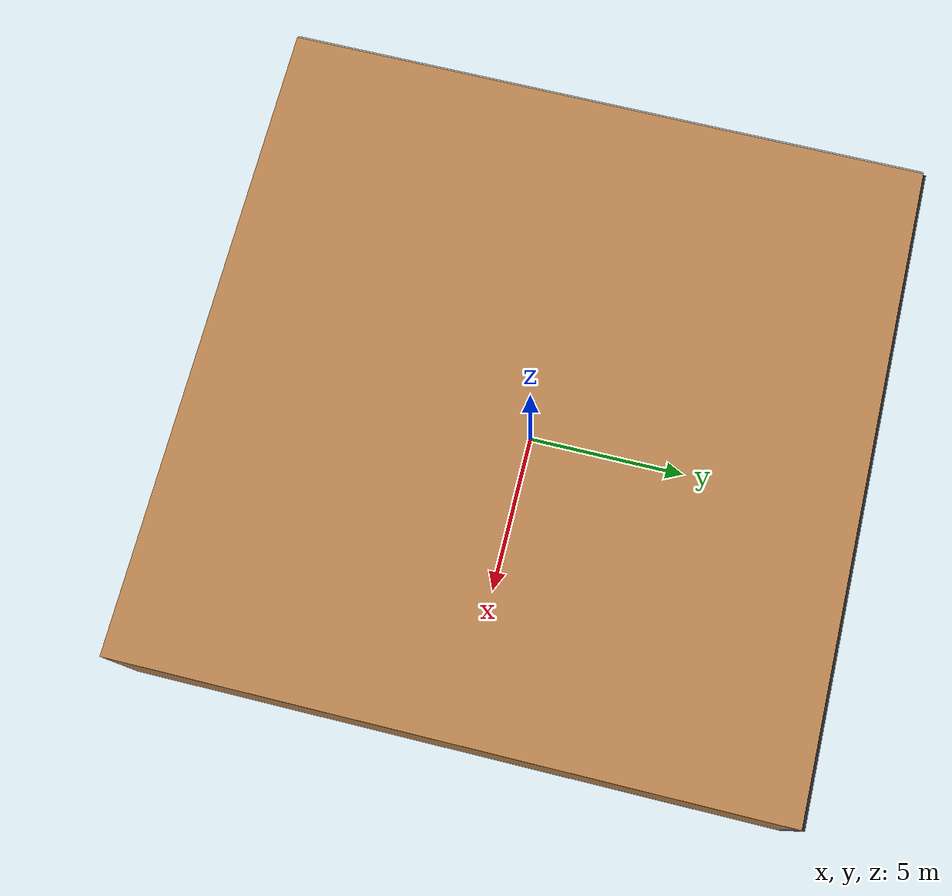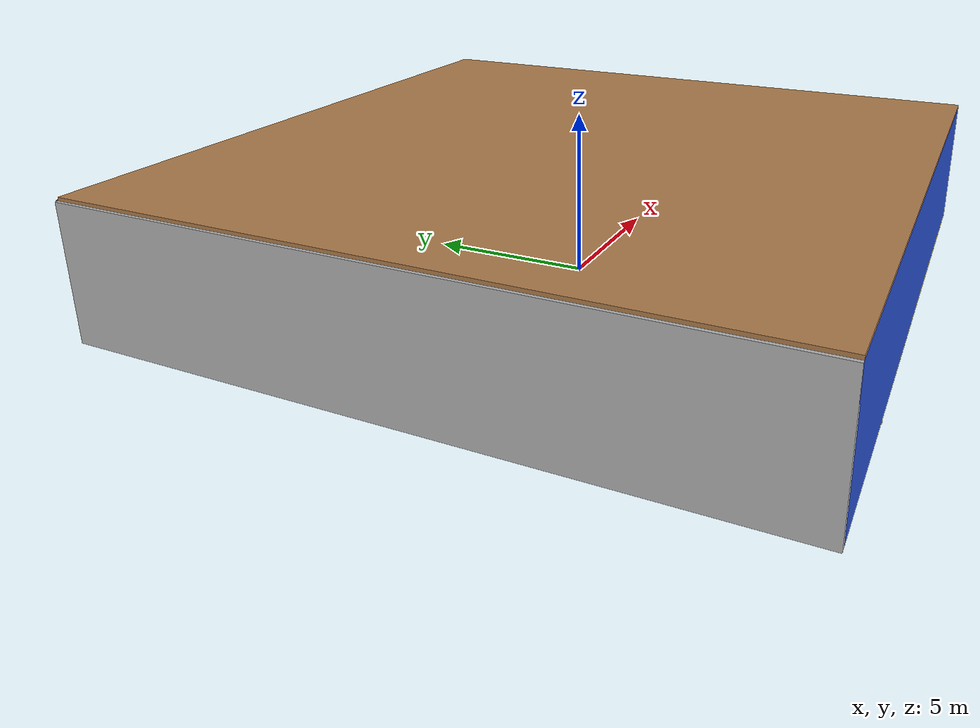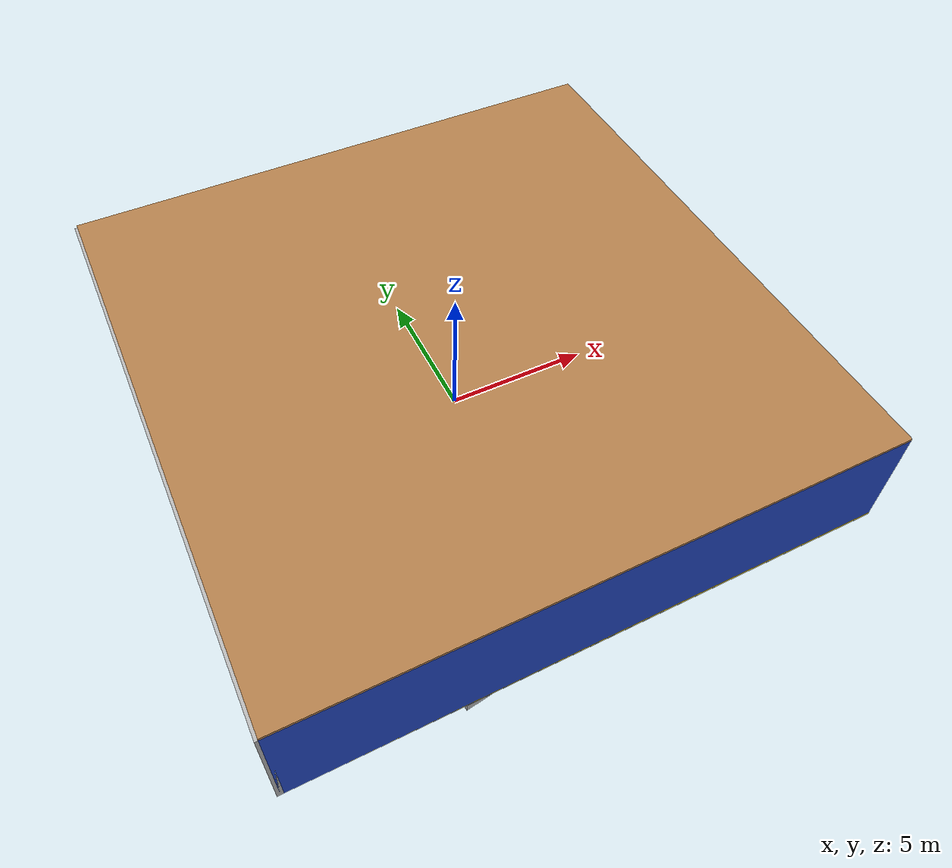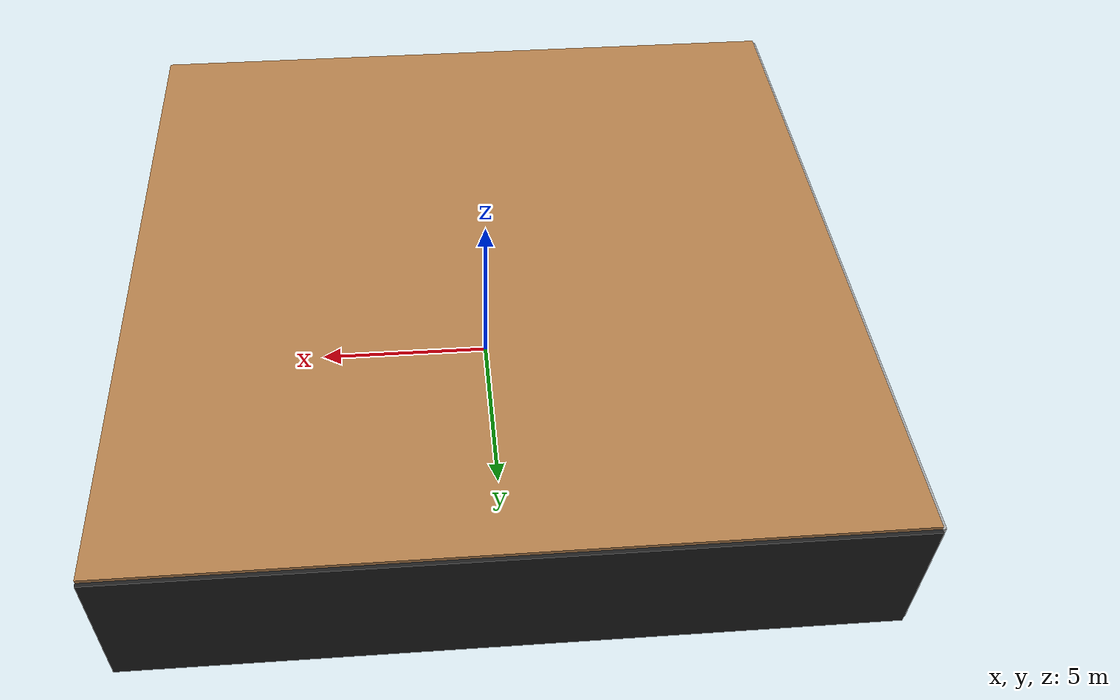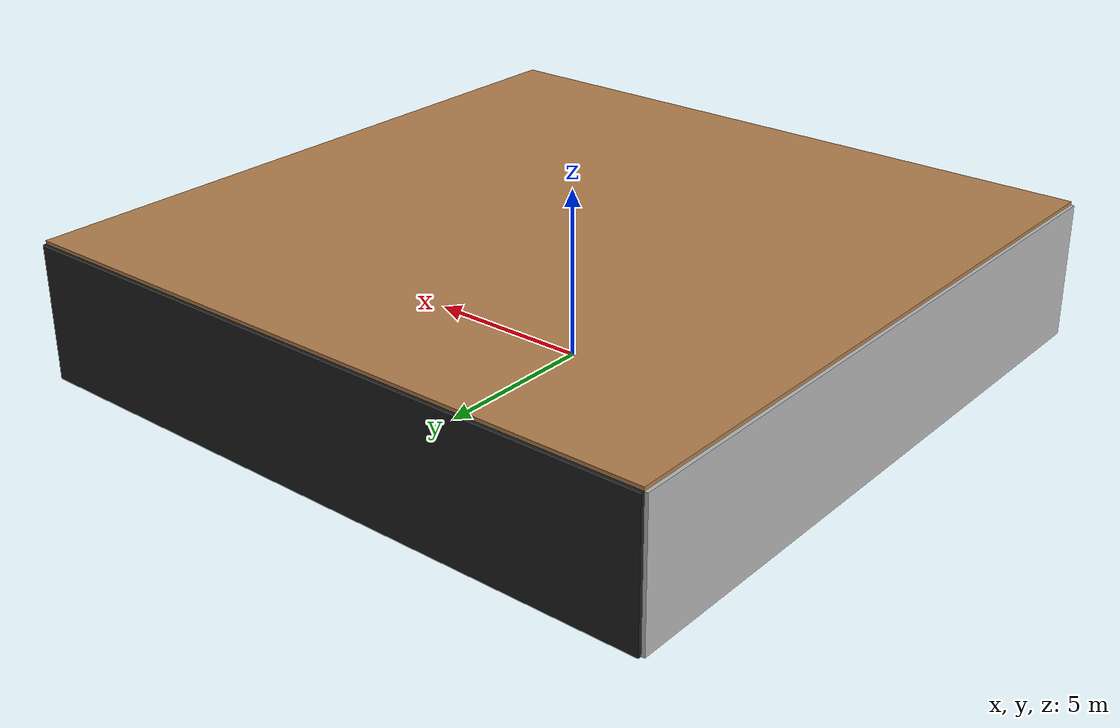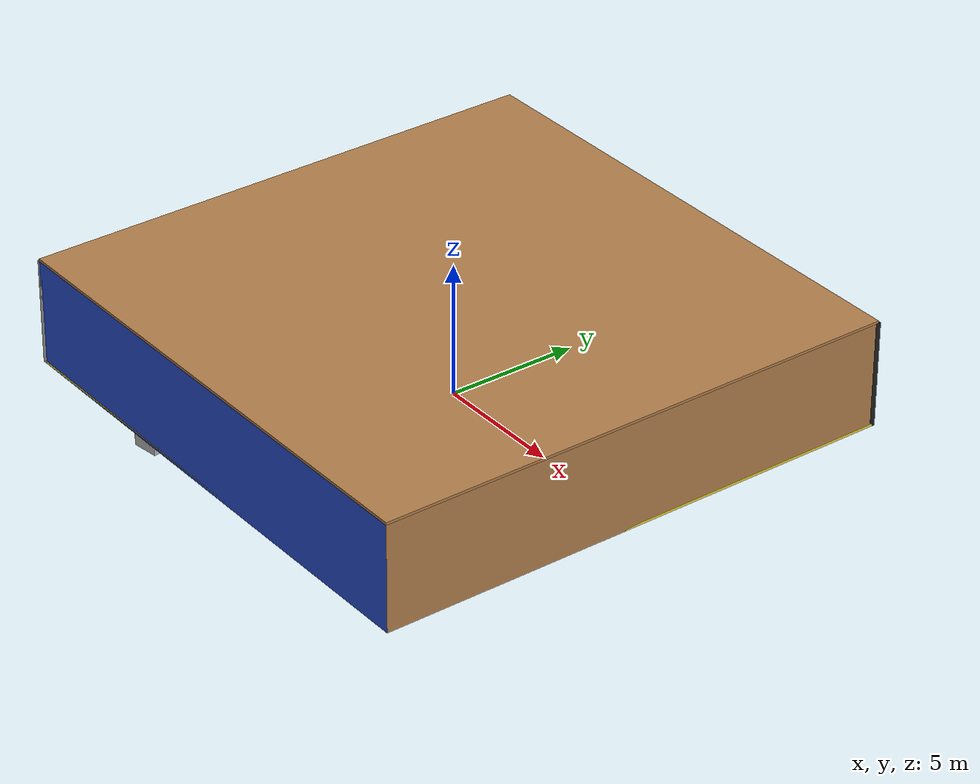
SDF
<sdf version="1.4">
 <world name="default">
  <physics type="ode">
   <max_step_size>0.001</max_step_size>
   <real_time_factor>1</real_time_factor>
   <real_time_update_rate>1000</real_time_update_rate>
   <gravity>0 0 -9.8</gravity>
  </physics>
  <scene><ambient>0.4 0.4 0.4 1</ambient><background>0.7 0.7 0.7 1</background><shadows>1</shadows></scene>
  <model name="Surrounding">
   <static>1</static>
   <link name="Ceiling">
    <collision name="Ceiling_Collision"><geometry><box><size>20 20 0.1</size></box></geometry></collision>
    <visual name="Ceiling_Visual">
     <geometry><box><size>20 20 0.1</size></box></geometry>
     <material>
      <script><uri>file://media/materials/scripts/gazebo.material</uri><name>Gazebo/WoodFloor</name></script>
     </material>
    </visual>
    <pose>0 0 4.05 0 0 0</pose>
   </link>
   <link name="Wall_South">
    <collision name="Wall_South_Collision">
     <geometry><box><size>20 0 4</size></box></geometry>
     <pose>0 0 2 0 -0 0</pose>
    </collision>
    <visual name="Wall_South_Visual">
     <pose>0 0 2 0 -0 0</pose>
     <geometry><box><size>20 0 4</size></box></geometry>
     <material>
      <script><uri>file://media/materials/scripts/gazebo.material</uri><name>Gazebo/BlueGlow</name></script>
     </material>
    </visual>
    <velocity_decay><linear>0</linear><angular>0</angular></velocity_decay>
    <pose>0 -10 0 0 -0 0</pose>
   </link>
   <link name="Wall_East">
    <collision name="Wall_21_Collision">
     <geometry><box><size>20 0 4</size></box></geometry>
     <pose>0 0 2 0 -0 0</pose>
    </collision>
    <visual name="Wall_21_Visual">
     <pose>0 0 2 0 -0 0</pose>
     <geometry><box><size>20 0 4</size></box></geometry>
     <material>
      <script><uri>file://media/materials/scripts/gazebo.material</uri><name>Gazebo/WoodFloor</name></script>
     </material>
    </visual>
    <velocity_decay><linear>0</linear><angular>0</angular></velocity_decay>
    <pose>10 0 0 0 -0 1.5708</pose>
   </link>
   <link name="Wall_North">
    <collision name="Wall_22_Collision">
     <geometry><box><size>20 0.2 4</size></box></geometry>
     <pose>0 0 2 0 -0 0</pose>
    </collision>
    <visual name="Wall_22_Visual">
     <pose>0 0 2 0 -0 0</pose>
     <geometry><box><size>20 0.2 4</size></box></geometry>
     <material>
      <script><uri>file://media/materials/scripts/gazebo.material</uri><name>Gazebo/Black</name></script>
     </material>
    </visual>
    <velocity_decay><linear>0</linear><angular>0</angular></velocity_decay>
    <pose>0 10 0 0 -0 0</pose>
   </link>
   <link name="Wall_West">
    <collision name="Wall_23_Collision">
     <geometry><box><size>20 0.2 4</size></box></geometry>
     <pose>0 0 2 0 -0 0</pose>
    </collision>
    <visual name="Wall_23_Visual">
     <pose>0 0 2 0 -0 0</pose>
     <geometry><box><size>20 0.2 4</size></box></geometry>
     <material>
      <script><uri>file://media/materials/scripts/gazebo.material</uri><name>Gazebo/PioneerBody</name></script>
     </material>
    </visual>
    <velocity_decay><linear>0</linear><angular>0</angular></velocity_decay>
    <pose>-10 0 0 0 0 -1.5708</pose>
   </link>
   <link name="Ground_link">
    <collision name="collision">
     <pose>0 0 .05 0 -0 0</pose>
     <geometry><box><size>20 20 0.1</size></box></geometry>
    </collision>
    <visual name="visual">
     <pose>0 0 .05 0 -0 0</pose>
     <geometry><box><size>20 20 0.1</size></box></geometry>
     <material>
      <script><uri>file://media/materials/scripts/gazebo.material</uri><name>Gazebo/ZincYellow</name></script>
     </material>
    </visual>
   </link>
   <static>1</static>
  </model>
  <spherical_coordinates>
   <surface_model>EARTH_WGS84</surface_model>
   <latitude_deg>0</latitude_deg>
   <longitude_deg>0</longitude_deg>
   <elevation>0</elevation>
   <heading_deg>0</heading_deg>
  </spherical_coordinates>
  <light name="lightball_0" type="diffuse">
   <diffuse>0.8 0.8 0.8 1</diffuse>
   <specular>0.2 0.2 0.2 1</specular>
   <attenuation>
    <range>100</range>
    <constant>0.7</constant>
    <linear>0.01</linear>
    <quadratic>0.001</quadratic>
   </attenuation>
   <direction>-0.5 0.1 -0.9</direction>
   <pose>-9.20601702937 3.60802405178 1.48068144095 0 0 0</pose>
  </light>
  <light name="lightball_1" type="diffuse">
   <diffuse>0.8 0.8 0.8 1</diffuse>
   <specular>0.2 0.2 0.2 1</specular>
   <attenuation>
    <range>100</range>
    <constant>0.7</constant>
    <linear>0.01</linear>
    <quadratic>0.001</quadratic>
   </attenuation>
   <direction>-0.5 0.1 -0.9</direction>
   <pose>0.834174439527 -0.254059379427 1.10624301469 0 0 0</pose>
  </light>
  <light name="lightball_2" type="diffuse">
   <diffuse>0.8 0.8 0.8 1</diffuse>
   <specular>0.2 0.2 0.2 1</specular>
   <attenuation>
    <range>100</range>
    <constant>0.7</constant>
    <linear>0.01</linear>
    <quadratic>0.001</quadratic>
   </attenuation>
   <direction>-0.5 0.1 -0.9</direction>
   <pose>-4.93184321753 -4.84861251137 2.38601826765 0 0 0</pose>
  </light>
  <light name="lightball_3" type="diffuse">
   <diffuse>0.8 0.8 0.8 1</diffuse>
   <specular>0.2 0.2 0.2 1</specular>
   <attenuation>
    <range>100</range>
    <constant>0.7</constant>
    <linear>0.01</linear>
    <quadratic>0.001</quadratic>
   </attenuation>
   <direction>-0.5 0.1 -0.9</direction>
   <pose>1.9976528027 0.181559315693 1.82631915254 0 0 0</pose>
  </light>
  <light name="lightball_4" type="diffuse">
   <diffuse>0.8 0.8 0.8 1</diffuse>
   <specular>0.2 0.2 0.2 1</specular>
   <attenuation>
    <range>100</range>
    <constant>0.7</constant>
    <linear>0.01</linear>
    <quadratic>0.001</quadratic>
   </attenuation>
   <direction>-0.5 0.1 -0.9</direction>
   <pose>9.37016146813 0.814227868745 3.13006861489 0 0 0</pose>
  </light>
  <include>
   <uri>model://robocup_3Dsim_goal</uri>
   <pose>-8.01217708809 -7.06926584991 0 0 0 0.363728879948</pose>
  </include>
  <include>
   <uri>model://textured_shapes</uri>
   <pose>-4.20160288306 -7.90262720511 0 0 0 0.130359160434</pose>
  </include>
  <include>
   <uri>model://robocup_3Dsim_goal</uri>
   <pose>4.54201660173 8.1013663071 0 0 0 2.35875189465</pose>
  </include>
  <include><uri>model://cabinet</uri><pose>7.46409373178 -7.75363626894 0 0 0 0.371598380981</pose></include>
  <include><uri>model://cabinet</uri><pose>6.81482250803 0.79221804802 0 0 0 2.89007278035</pose></include>
 </world>
</sdf>

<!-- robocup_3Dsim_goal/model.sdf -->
<sdf version="1.5">
  <model name="robocup_3d_goal">
    <static>true</static>
    <link name="left_post">
      <pose>0 1.05 0.45 0 0 0</pose>
      <collision name="collision">
        <geometry>
          <cylinder>
            <radius>0.05</radius>
            <length>0.9</length>
          </cylinder>
        </geometry>
      </collision>
      <visual name="visual">
        <geometry>
          <cylinder>
            <radius>0.05</radius>
            <length>0.9</length>
          </cylinder>
        </geometry>
        <material>
          <script>
            <uri>file://media/materials/scripts/gazebo.material</uri>
            <name>Gazebo/ZincYellow</name>
          </script>
        </material>
      </visual>
    </link>
    <link name="left_support_horiz_lower">
      <pose>0.30 1.05 0.01 0 0 0</pose>
      <collision name="collision">
        <geometry>
          <box>
            <size>0.50 0.02 0.02</size>
          </box>
        </geometry>
      </collision>
      <visual name="visual">
        <geometry>
          <box>
            <size>0.50 0.02 0.02</size>
          </box>
        </geometry>
        <material>
          <script>
            <uri>file://media/materials/scripts/gazebo.material</uri>
            <name>Gazebo/White</name>
          </script>
        </material>
      </visual>
    </link>
    <link name="left_support_horiz_upper">
      <pose>0.30 1.05 0.79 0 0 0</pose>
      <collision name="collision">
        <geometry>
          <box>
            <size>0.50 0.02 0.02</size>
          </box>
        </geometry>
      </collision>
      <visual name="visual">
        <geometry>
          <box>
            <size>0.50 0.02 0.02</size>
          </box>
        </geometry>
        <material>
          <script>
            <uri>file://media/materials/scripts/gazebo.material</uri>
            <name>Gazebo/White</name>
          </script>
        </material>
      </visual>
    </link>
    <link name="left_support_vertical">
      <pose>0.56 1.05 0.4 0 1.5708 0</pose>
      <collision name="collision">
        <geometry>
          <box>
            <size>0.80 0.02 0.02</size>
          </box>
        </geometry>
      </collision>
      <visual name="visual">
        <geometry>
          <box>
            <size>0.80 0.02 0.02</size>
          </box>
        </geometry>
        <material>
          <script>
            <uri>file://media/materials/scripts/gazebo.material</uri>
            <name>Gazebo/White</name>
          </script>
        </material>
      </visual>
    </link>
    <link name="right_support_horiz_lower">
      <pose>0.30 -1.05 0.01 0 0 0</pose>
      <collision name="collision">
        <geometry>
          <box>
            <size>0.50 0.02 0.02</size>
          </box>
        </geometry>
      </collision>
      <visual name="visual">
        <geometry>
          <box>
            <size>0.50 0.02 0.02</size>
          </box>
        </geometry>
        <material>
          <script>
            <uri>file://media/materials/scripts/gazebo.material</uri>
            <name>Gazebo/White</name>
          </script>
        </material>
      </visual>
    </link>
    <link name="right_support_horiz_upper">
      <pose>0.30 -1.05 0.79 0 0 0</pose>
      <collision name="collision">
        <geometry>
          <box>
            <size>0.50 0.02 0.02</size>
          </box>
        </geometry>
      </collision>
      <visual name="visual">
        <geometry>
          <box>
            <size>0.50 0.02 0.02</size>
          </box>
        </geometry>
        <material>
          <script>
            <uri>file://media/materials/scripts/gazebo.material</uri>
            <name>Gazebo/White</name>
          </script>
        </material>
      </visual>
    </link>
    <link name="right_support_vertical">
      <pose>0.56 -1.05 0.4 0 1.5708 0</pose>
      <collision name="collision">
        <geometry>
          <box>
            <size>0.80 0.02 0.02</size>
          </box>
        </geometry>
      </collision>
      <visual name="visual">
        <geometry>
          <box>
            <size>0.80 0.02 0.02</size>
          </box>
        </geometry>
        <material>
          <script>
            <uri>file://media/materials/scripts/gazebo.material</uri>
            <name>Gazebo/White</name>
          </script>
        </material>
      </visual>
    </link>
    <link name="center_support_horiz_lower">
      <pose>0.56 0 0.01 0 1.5708 0</pose>
      <collision name="collision">
        <geometry>
          <box>
            <size>0.02 2.08 0.02</size>
          </box>
        </geometry>
      </collision>
      <visual name="visual">
        <geometry>
          <box>
            <size>0.02 2.08 0.02</size>
          </box>
        </geometry>
        <material>
          <script>
            <uri>file://media/materials/scripts/gazebo.material</uri>
            <name>Gazebo/White</name>
          </script>
        </material>
      </visual>
    </link>
    <link name="center_support_horiz_upper">
      <pose>0.56 0 0.79 0 1.5708 0</pose>
      <collision name="collision">
        <geometry>
          <box>
            <size>0.02 2.08 0.02</size>
          </box>
        </geometry>
      </collision>
      <visual name="visual">
        <geometry>
          <box>
            <size>0.02 2.08 0.02</size>
          </box>
        </geometry>
        <material>
          <script>
            <uri>file://media/materials/scripts/gazebo.material</uri>
            <name>Gazebo/White</name>
          </script>
        </material>
      </visual>
    </link>
    <link name="right_post">
      <pose>0 -1.05 0.45 0 0 0</pose>
      <collision name="collision">
        <geometry>
          <cylinder>
            <radius>0.05</radius>
            <length>0.9</length>
          </cylinder>
        </geometry>
      </collision>
      <visual name="visual">
        <geometry>
          <cylinder>
            <radius>0.05</radius>
            <length>0.9</length>
          </cylinder>
        </geometry>
        <material>
          <script>
            <uri>file://media/materials/scripts/gazebo.material</uri>
            <name>Gazebo/ZincYellow</name>
          </script>
        </material>
      </visual>
    </link>
    <link name="crossbar">
      <pose>0 0 0.85 1.57 1.57 0</pose>
      <collision name="collision">
        <geometry>
          <cylinder>
            <radius>0.05</radius>
            <length>2.0</length>
          </cylinder>
        </geometry>
      </collision>
      <visual name="visual">
        <geometry>
          <cylinder>
            <radius>0.05</radius>
            <length>2.0</length>
          </cylinder>
        </geometry>
        <material>
          <script>
            <uri>file://media/materials/scripts/gazebo.material</uri>
            <name>Gazebo/ZincYellow</name>
          </script>
        </material>
      </visual>
    </link>
    <link name="center_net">
      <pose>0.56 0 0.40 0 0 0</pose>
      <collision name="collision">
        <geometry>
          <box>
            <size>0.01 2.1 0.80</size>
          </box>
        </geometry>
      </collision>
      <visual name="visual">
        <geometry>
          <box>
            <size>0.01 2.1 0.80</size>
          </box>
        </geometry>
        <material>
          <script>
            <uri>model://../model_source/models/robocup09_spl_field/materials/scripts/</uri>
            <uri>model://../model_source/models/robocup09_spl_field/materials/textures/</uri>
            <name>RoboCup/Net</name>
          </script>
        </material>
      </visual>
    </link>
    <link name="left_net">
      <pose>0.30 1.05 0.40 0 0 0</pose>
      <collision name="collision">
        <geometry>
          <box>
            <size>0.50 0.01 0.76</size>
          </box>
        </geometry>
      </collision>
      <visual name="visual">
        <geometry>
          <box>
            <size>0.50 0.01 0.76</size>
          </box>
        </geometry>
        <material>
          <script>
            <uri>model://../model_source/models/robocup09_spl_field/materials/scripts/</uri>
            <uri>model://../model_source/models/robocup09_spl_field/materials/textures/</uri>
            <name>RoboCup/Net</name>
          </script>
        </material>
      </visual>
    </link>
    <link name="right_net">
      <pose>0.30 -1.05 0.40 0 0 0</pose>
      <collision name="collision">
        <geometry>
          <box>
            <size>0.50 0.01 0.76</size>
          </box>
        </geometry>
      </collision>
      <visual name="visual">
        <geometry>
          <box>
            <size>0.50 0.01 0.76</size>
          </box>
        </geometry>
        <material>
          <script>
            <uri>model://../model_source/models/robocup09_spl_field/materials/scripts/</uri>
            <uri>model://../model_source/models/robocup09_spl_field/materials/textures/</uri>
            <name>RoboCup/Net</name>
          </script>
        </material>
      </visual>
    </link>
  </model>
</sdf>

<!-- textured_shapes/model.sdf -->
<sdf version="1.6">
  <model name="textured_shapes">
    <pose>0 0 0.5 0 0 0</pose>
    <link name="box">
      <pose>0 -1.5 0 0 0 0</pose>
      <collision name="collision">
        <geometry>
          <box>
            <size>1 1 1</size>
          </box>
        </geometry>
      </collision>
      <visual name="visual">
        <geometry>
          <box>
            <size>1 1 1</size>
          </box>
        </geometry>
        <material>
          <script>
            <uri>model://../model_source/models/textured_shapes/materials/scripts</uri>
            <uri>model://../model_source/models/textured_shapes/materials/textures</uri>
            <name>TexturedShape/Squares</name>
          </script>
        </material>
      </visual>
    </link>
    <link name="sphere">
      <collision name="collision">
        <geometry>
          <sphere>
            <radius>0.5</radius>
          </sphere>
        </geometry>
      </collision>
      <visual name="visual">
        <geometry>
          <sphere>
            <radius>0.5</radius>
          </sphere>
        </geometry>
        <material>
          <script>
            <uri>model://../model_source/models/textured_shapes/materials/scripts</uri>
            <uri>model://../model_source/models/textured_shapes/materials/textures</uri>
            <name>TexturedShape/Squares</name>
          </script>
        </material>
      </visual>
    </link>
    <link name="cylinder">
      <pose>0 1.5 0 0 0 0</pose>
      <collision name="collision">
        <geometry>
          <cylinder>
            <radius>0.5</radius>
            <length>1</length>
          </cylinder>
        </geometry>
      </collision>
      <visual name="visual">
        <geometry>
          <cylinder>
            <radius>0.5</radius>
            <length>1</length>
          </cylinder>
        </geometry>
        <material>
          <script>
            <uri>model://../model_source/models/textured_shapes/materials/scripts</uri>
            <uri>model://../model_source/models/textured_shapes/materials/textures</uri>
            <name>TexturedShape/Squares</name>
          </script>
        </material>
      </visual>
    </link>
  </model>
</sdf>

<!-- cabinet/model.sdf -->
<sdf version="1.5">
  <model name="cabinet">
    <static>true</static>
    <link name="cabinet_bottom_plate">
      <inertial>
        <pose>0 0 -1 0 0 0</pose>
        <inertia>
          <ixx>2.050000</ixx>
          <ixy>0</ixy>
          <ixz>0</ixz>
          <iyy>2.050000</iyy>
          <iyz>0</iyz>
          <izz>2.050000</izz>
        </inertia>
        <mass>25.000000</mass>
      </inertial>
      <collision name="cabinet_bottom_plate_geom">
        <pose>0 0 0.010000 0 0 0</pose>
        <geometry>
          <box>
            <size>0.450000 0.450000 0.020000</size>
          </box>
        </geometry>
      </collision>
      <visual name="cabinet_bottom_plate_geom_visual">
        <pose>0 0 0.010000 0 0 0</pose>
        <geometry>
          <box>
            <size>0.450000 0.450000 0.020000</size>
          </box>
        </geometry>
        <material>
          <script>
            <uri>model://media/materials/scripts/gazebo.material</uri>
            <name>Gazebo/Wood</name>
          </script>
        </material>
      </visual>
      <collision name="cabinet_bottom_plate_geom_cabinet_back_plate">
        <pose>0.235000 0 0.510000 0 0 0</pose>
        <geometry>
          <box>
            <size>0.020000 0.450000 1.020000</size>
          </box>
        </geometry>
      </collision>
      <visual name="cabinet_bottom_plate_geom_cabinet_back_plate_visual">
        <pose>0.235000 0 0.510000 0 0 0</pose>
        <geometry>
          <box>
            <size>0.020000 0.450000 1.020000</size>
          </box>
        </geometry>
        <material>
          <script>
            <uri>model://media/materials/scripts/gazebo.material</uri>
            <name>Gazebo/Wood</name>
          </script>
        </material>
      </visual>
      <collision name="cabinet_bottom_plate_geom_cabinet_left_plate">
        <pose>0 0.235000 0.510000 0 0 0</pose>
        <geometry>
          <box>
            <size>0.450000 0.020000 1.020000</size>
          </box>
        </geometry>
      </collision>
      <visual name="cabinet_bottom_plate_geom_cabinet_left_plate_visual">
        <pose>0 0.235000 0.510000 0 0 0</pose>
        <geometry>
          <box>
            <size>0.450000 0.020000 1.020000</size>
          </box>
        </geometry>
        <material>
          <script>
            <uri>model://media/materials/scripts/gazebo.material</uri>
            <name>Gazebo/Wood</name>
          </script>
        </material>
      </visual>
      <collision name="cabinet_bottom_plate_geom_cabinet_middle_plate">
        <pose>0 0 0.510000 0 0 0</pose>
        <geometry>
          <box>
            <size>0.450000 0.450000 0.020000</size>
          </box>
        </geometry>
      </collision>
      <visual name="cabinet_bottom_plate_geom_cabinet_middle_plate_visual">
        <pose>0 0 0.510000 0 0 0</pose>
        <geometry>
          <box>
            <size>0.450000 0.450000 0.020000</size>
          </box>
        </geometry>
        <material>
          <script>
            <uri>model://media/materials/scripts/gazebo.material</uri>
            <name>Gazebo/Wood</name>
          </script>
        </material>
      </visual>
      <collision name="cabinet_bottom_plate_geom_cabinet_right_plate">
        <pose>0 -0.235000 0.510000 0 0 0</pose>
        <geometry>
          <box>
            <size>0.450000 0.020000 1.020000</size>
          </box>
        </geometry>
      </collision>
      <visual name="cabinet_bottom_plate_geom_cabinet_right_plate_visual">
        <pose>0 -0.235000 0.510000 0 0 0</pose>
        <geometry>
          <box>
            <size>0.450000 0.020000 1.020000</size>
          </box>
        </geometry>
        <material>
          <script>
            <uri>model://media/materials/scripts/gazebo.material</uri>
            <name>Gazebo/Wood</name>
          </script>
        </material>
      </visual>
      <collision name="cabinet_bottom_plate_geom_cabinet_top_plate">
        <pose>0 0 1.010000 0 0 0</pose>
        <geometry>
          <box>
            <size>0.450000 0.450000 0.020000</size>
          </box>
        </geometry>
      </collision>
      <visual name="cabinet_bottom_plate_geom_cabinet_top_plate_visual">
        <pose>0 0 1.010000 0 0 0</pose>
        <geometry>
          <box>
            <size>0.450000 0.450000 0.020000</size>
          </box>
        </geometry>
        <material>
          <script>
            <uri>model://media/materials/scripts/gazebo.material</uri>
            <name>Gazebo/Wood</name>
          </script>
        </material>
      </visual>
    </link>
  </model>
</sdf>
